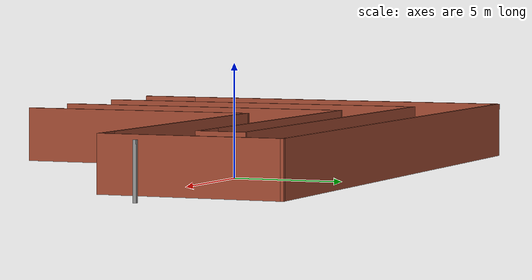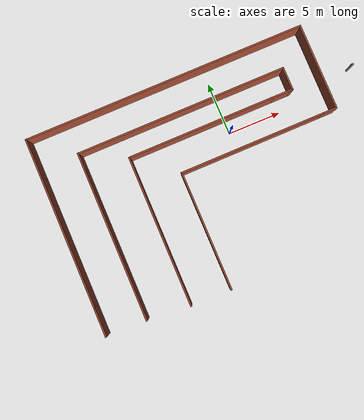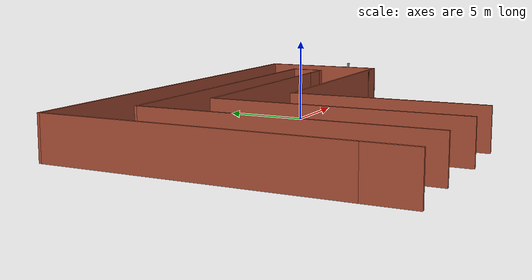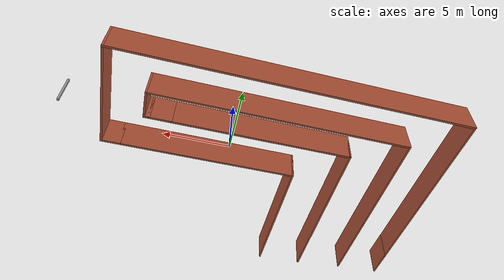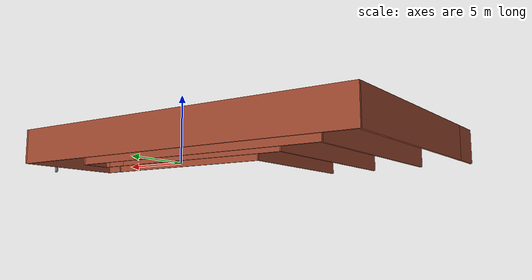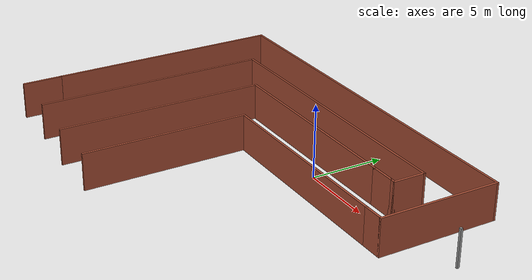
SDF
<?xml version='1.0'?>
<sdf version='1.7'>
  <model name='square_maze_world'>
    <pose>-2.38143 -3.3325 0 0 -0 0</pose>
    <link name='Wall_0'>
      <collision name='Wall_0_Collision'>
        <geometry>
          <box>
            <size>14.25 0.15 2.5</size>
          </box>
        </geometry>
        <pose>0 0 1.25 0 -0 0</pose>
      </collision>
      <visual name='Wall_0_Visual'>
        <pose>0 0 1.25 0 -0 0</pose>
        <geometry>
          <box>
            <size>14.25 0.15 2.5</size>
          </box>
        </geometry>
        <material>
          <script>
            <uri>file://media/materials/scripts/gazebo.material</uri>
            <name>Gazebo/Bricks</name>
          </script>
          <ambient>1 1 1 1</ambient>
        </material>
        <meta>
          <layer>0</layer>
        </meta>
      </visual>
      <pose>-6.92541 -2.48959 0 0 -0 1.5708</pose>
    </link>
    <link name='Wall_12'>
      <collision name='Wall_12_Collision'>
        <geometry>
          <box>
            <size>13.75 0.15 2.5</size>
          </box>
        </geometry>
        <pose>0 0 1.25 0 -0 0</pose>
      </collision>
      <visual name='Wall_12_Visual'>
        <pose>0 0 1.25 0 -0 0</pose>
        <geometry>
          <box>
            <size>13.75 0.15 2.5</size>
          </box>
        </geometry>
        <material>
          <script>
            <uri>file://media/materials/scripts/gazebo.material</uri>
            <name>Gazebo/Bricks</name>
          </script>
          <ambient>1 1 1 1</ambient>
        </material>
        <meta>
          <layer>0</layer>
        </meta>
      </visual>
      <pose>3.67541 1.5001 0 0 -0 0</pose>
    </link>
    <link name='Wall_14'>
      <collision name='Wall_14_Collision'>
        <geometry>
          <box>
            <size>1.5 0.15 2.5</size>
          </box>
        </geometry>
        <pose>0 0 1.25 0 -0 0</pose>
      </collision>
      <visual name='Wall_14_Visual'>
        <pose>0 0 1.25 0 -0 0</pose>
        <geometry>
          <box>
            <size>1.5 0.15 2.5</size>
          </box>
        </geometry>
        <material>
          <script>
            <uri>file://media/materials/scripts/gazebo.material</uri>
            <name>Gazebo/Bricks</name>
          </script>
          <ambient>1 1 1 1</ambient>
        </material>
        <meta>
          <layer>0</layer>
        </meta>
      </visual>
      <pose>11.1504 1.5001 0 0 -0 0</pose>
    </link>
    <link name='Wall_15'>
      <collision name='Wall_15_Collision'>
        <geometry>
          <box>
            <size>8.25 0.15 2.5</size>
          </box>
        </geometry>
        <pose>0 0 1.25 0 -0 0</pose>
      </collision>
      <visual name='Wall_15_Visual'>
        <pose>0 0 1.25 0 -0 0</pose>
        <geometry>
          <box>
            <size>8.25 0.15 2.5</size>
          </box>
        </geometry>
        <material>
          <script>
            <uri>file://media/materials/scripts/gazebo.material</uri>
            <name>Gazebo/Bricks</name>
          </script>
          <ambient>1 1 1 1</ambient>
        </material>
        <meta>
          <layer>0</layer>
        </meta>
      </visual>
      <pose>11.8254 5.5501 0 0 -0 1.5708</pose>
    </link>
    <link name='Wall_18'>
      <collision name='Wall_18_Collision'>
        <geometry>
          <box>
            <size>0.5 0.15 2.5</size>
          </box>
        </geometry>
        <pose>0 0 1.25 0 -0 0</pose>
      </collision>
      <visual name='Wall_18_Visual'>
        <pose>0 0 1.25 0 -0 0</pose>
        <geometry>
          <box>
            <size>0.5 0.15 2.5</size>
          </box>
        </geometry>
        <material>
          <script>
            <uri>file://media/materials/scripts/gazebo.material</uri>
            <name>Gazebo/Bricks</name>
          </script>
          <ambient>1 1 1 1</ambient>
        </material>
        <meta>
          <layer>0</layer>
        </meta>
      </visual>
      <pose>8.69959 4.56041 0 0 -0 0</pose>
    </link>
    <link name='Wall_19'>
      <collision name='Wall_19_Collision'>
        <geometry>
          <box>
            <size>2.25 0.15 2.5</size>
          </box>
        </geometry>
        <pose>0 0 1.25 0 -0 0</pose>
      </collision>
      <visual name='Wall_19_Visual'>
        <pose>0 0 1.25 0 -0 0</pose>
        <geometry>
          <box>
            <size>2.25 0.15 2.5</size>
          </box>
        </geometry>
        <material>
          <script>
            <uri>file://media/materials/scripts/gazebo.material</uri>
            <name>Gazebo/Bricks</name>
          </script>
          <ambient>1 1 1 1</ambient>
        </material>
        <meta>
          <layer>0</layer>
        </meta>
      </visual>
      <pose>8.87459 5.61041 0 0 -0 1.5708</pose>
    </link>
    <link name='Wall_2'>
      <collision name='Wall_2_Collision'>
        <geometry>
          <box>
            <size>11.2501 0.15 2.5</size>
          </box>
        </geometry>
        <pose>0 0 1.25 0 -0 0</pose>
      </collision>
      <visual name='Wall_2_Visual'>
        <pose>0 0 1.25 0 -0 0</pose>
        <geometry>
          <box>
            <size>11.2501 0.15 2.5</size>
          </box>
        </geometry>
        <material>
          <script>
            <uri>file://media/materials/scripts/gazebo.material</uri>
            <name>Gazebo/Bricks</name>
          </script>
          <ambient>1 1 1 1</ambient>
        </material>
        <meta>
          <layer>0</layer>
        </meta>
      </visual>
      <pose>-3.13616 -4.0499 0 0 -0 1.57288</pose>
    </link>
    <link name='Wall_21'>
      <collision name='Wall_21_Collision'>
        <geometry>
          <box>
            <size>26.75 0.15 2.5</size>
          </box>
        </geometry>
        <pose>0 0 1.25 0 -0 0</pose>
      </collision>
      <visual name='Wall_21_Visual'>
        <pose>0 0 1.25 0 -0 0</pose>
        <geometry>
          <box>
            <size>26.75 0.15 2.5</size>
          </box>
        </geometry>
        <material>
          <script>
            <uri>file://media/materials/scripts/gazebo.material</uri>
            <name>Gazebo/Bricks</name>
          </script>
          <ambient>1 1 1 1</ambient>
        </material>
        <meta>
          <layer>0</layer>
        </meta>
      </visual>
      <pose>-1.47459 9.6001 0 0 -0 3.14159</pose>
    </link>
    <link name='Wall_23'>
      <collision name='Wall_23_Collision'>
        <geometry>
          <box>
            <size>20 0.15 2.5</size>
          </box>
        </geometry>
        <pose>0 0 1.25 0 -0 0</pose>
      </collision>
      <visual name='Wall_23_Visual'>
        <pose>0 0 1.25 0 -0 0</pose>
        <geometry>
          <box>
            <size>20 0.15 2.5</size>
          </box>
        </geometry>
        <material>
          <script>
            <uri>file://media/materials/scripts/gazebo.material</uri>
            <name>Gazebo/Bricks</name>
          </script>
          <ambient>1 1 1 1</ambient>
        </material>
        <meta>
          <layer>0</layer>
        </meta>
      </visual>
      <pose>-1.05041 6.66041 0 0 -0 3.14159</pose>
    </link>
    <link name='Wall_24'>
      <collision name='Wall_24_Collision'>
        <geometry>
          <box>
            <size>16 0.15 2.5</size>
          </box>
        </geometry>
        <pose>0 0 1.25 0 -0 0</pose>
      </collision>
      <visual name='Wall_24_Visual'>
        <pose>0 0 1.25 0 -0 0</pose>
        <geometry>
          <box>
            <size>16 0.15 2.5</size>
          </box>
        </geometry>
        <material>
          <script>
            <uri>file://media/materials/scripts/gazebo.material</uri>
            <name>Gazebo/Bricks</name>
          </script>
          <ambient>1 1 1 1</ambient>
        </material>
        <meta>
          <layer>0</layer>
        </meta>
      </visual>
      <pose>-10.9754 -1.26459 0 0 -0 -1.5708</pose>
    </link>
    <link name='Wall_26'>
      <collision name='Wall_26_Collision'>
        <geometry>
          <box>
            <size>16.25 0.15 2.5</size>
          </box>
        </geometry>
        <pose>0 0 1.25 0 -0 0</pose>
      </collision>
      <visual name='Wall_26_Visual'>
        <pose>0 0 1.25 0 -0 0</pose>
        <geometry>
          <box>
            <size>16.25 0.15 2.5</size>
          </box>
        </geometry>
        <material>
          <script>
            <uri>file://media/materials/scripts/gazebo.material</uri>
            <name>Gazebo/Bricks</name>
          </script>
          <ambient>1 1 1 1</ambient>
        </material>
        <meta>
          <layer>0</layer>
        </meta>
      </visual>
      <pose>-14.7746 1.5501 0 0 -0 -1.5708</pose>
    </link>
    <link name='Wall_27'>
      <collision name='Wall_27_Collision'>
        <geometry>
          <box>
            <size>2.75 0.15 2.5</size>
          </box>
        </geometry>
        <pose>0 0 1.25 0 -0 0</pose>
      </collision>
      <visual name='Wall_27_Visual'>
        <pose>0 0 1.25 0 -0 0</pose>
        <geometry>
          <box>
            <size>2.75 0.15 2.5</size>
          </box>
        </geometry>
        <material>
          <script>
            <uri>file://media/materials/scripts/gazebo.material</uri>
            <name>Gazebo/Bricks</name>
          </script>
          <ambient>1 1 1 1</ambient>
        </material>
        <meta>
          <layer>0</layer>
        </meta>
      </visual>
      <pose>-14.7746 -7.7999 0 0 -0 -1.5708</pose>
    </link>
    <link name='Wall_4'>
      <collision name='Wall_4_Collision'>
        <geometry>
          <box>
            <size>14 0.15 2.5</size>
          </box>
        </geometry>
        <pose>0 0 1.25 0 -0 0</pose>
      </collision>
      <visual name='Wall_4_Visual'>
        <pose>0 0 1.25 0 -0 0</pose>
        <geometry>
          <box>
            <size>14 0.15 2.5</size>
          </box>
        </geometry>
        <material>
          <script>
            <uri>file://media/materials/scripts/gazebo.material</uri>
            <name>Gazebo/Bricks</name>
          </script>
          <ambient>1 1 1 1</ambient>
        </material>
        <meta>
          <layer>0</layer>
        </meta>
      </visual>
      <pose>-0.000408 4.56041 0 0 -0 0</pose>
    </link>
    <link name='Wall_5'>
      <collision name='Wall_5_Collision'>
        <geometry>
          <box>
            <size>1.75 0.15 2.5</size>
          </box>
        </geometry>
        <pose>0 0 1.25 0 -0 0</pose>
      </collision>
      <visual name='Wall_5_Visual'>
        <pose>0 0 1.25 0 -0 0</pose>
        <geometry>
          <box>
            <size>1.75 0.15 2.5</size>
          </box>
        </geometry>
        <material>
          <script>
            <uri>file://media/materials/scripts/gazebo.material</uri>
            <name>Gazebo/Bricks</name>
          </script>
          <ambient>1 1 1 1</ambient>
        </material>
        <meta>
          <layer>0</layer>
        </meta>
      </visual>
      <pose>7.72459 4.56041 0 0 -0 0</pose>
    </link>
    <link name='Wall_8'>
      <collision name='Wall_8_Collision'>
        <geometry>
          <box>
            <size>0.15 0.15 2.5</size>
          </box>
        </geometry>
        <pose>0 0 1.25 0 -0 0</pose>
      </collision>
      <visual name='Wall_8_Visual'>
        <pose>0 0 1.25 0 -0 0</pose>
        <geometry>
          <box>
            <size>0.15 0.15 2.5</size>
          </box>
        </geometry>
        <material>
          <script>
            <uri>file://media/materials/scripts/gazebo.material</uri>
            <name>Gazebo/Grey</name>
          </script>
          <ambient>1 1 1 1</ambient>
        </material>
        <meta>
          <layer>0</layer>
        </meta>
      </visual>
      <pose>14.7746 4.56041 0 0 -0 0</pose>
    </link>
    <static>1</static>
  </model>
</sdf>
